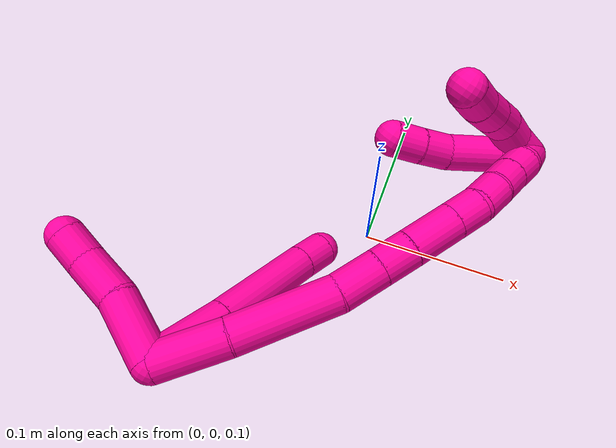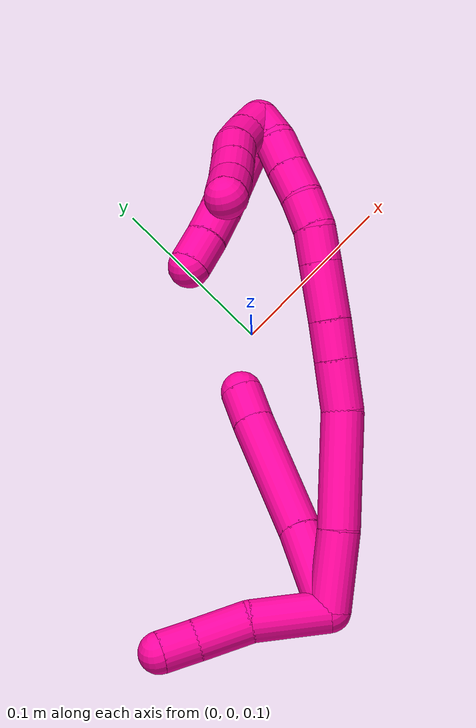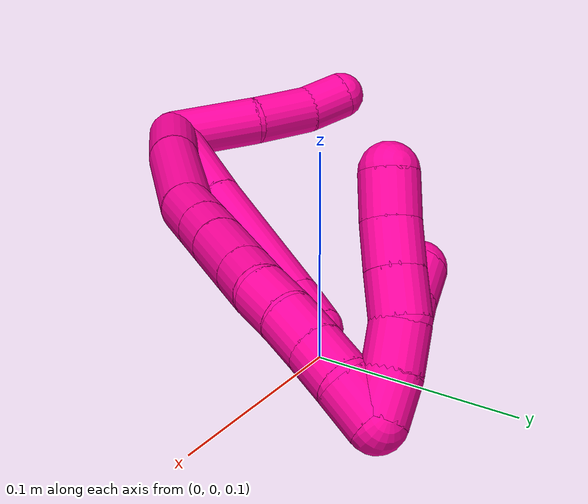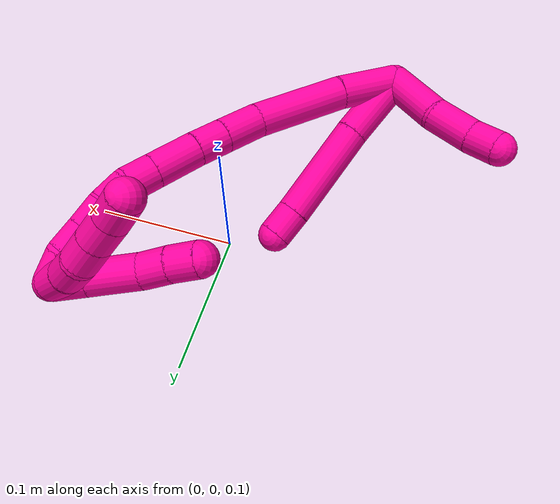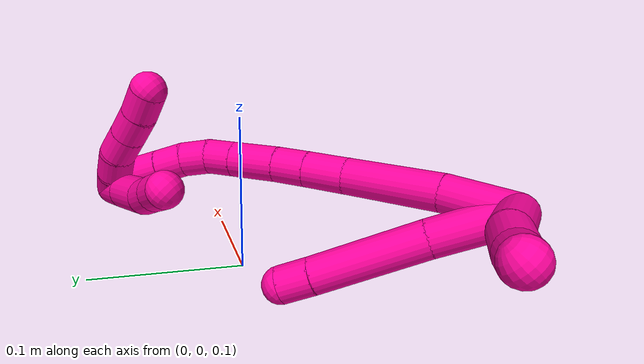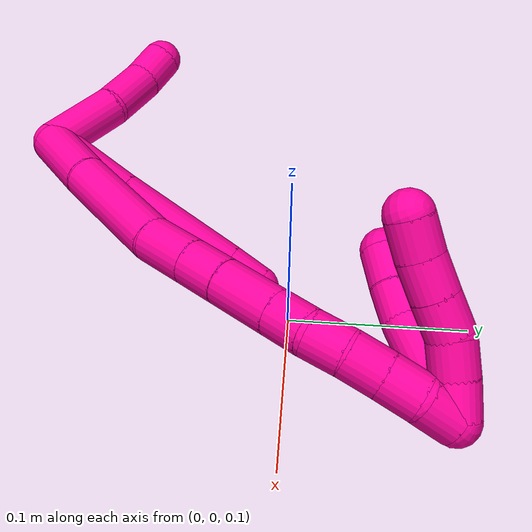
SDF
<sdf version="1.7">
 <world name="default">
  <model name="18">
   <static>0</static>
   <link name="18">
    <collision name="collision-cylinder-e_1_2_8">
     <pose>0.006686 0.022897 0.011166 -1.11707 0.256663 -0.16093</pose>
     <geometry><cylinder><radius>0.0125</radius><length>0.052675</length></cylinder></geometry>
     <surface>
      <friction><ode><mu>1.16</mu><mu2>1.16</mu2><slip1>0</slip1><slip2>0</slip2></ode></friction>
      <contact><ode><kp>1e+06</kp><kd>1</kd><max_vel>0</max_vel><min_depth>0.001</min_depth></ode></contact>
     </surface>
    </collision>
    <visual name="visual-cylinder-e_1_2_8">
     <pose>0.006686 0.022897 0.011166 -1.11707 0.256663 -0.16093</pose>
     <geometry><cylinder><radius>0.0125</radius><length>0.052675</length></cylinder></geometry>
     <material><ambient>1 0.007843 0.615686 1</ambient></material>
    </visual>
    <collision name="collision-cylinder-e_2_8_9">
     <pose>0.02098 0.079345 0.037704 -1.14117 0.203315 -0.13075</pose>
     <geometry><cylinder><radius>0.0125</radius><length>0.07536</length></cylinder></geometry>
     <surface>
      <friction><ode><mu>1.16</mu><mu2>1.16</mu2><slip1>0</slip1><slip2>0</slip2></ode></friction>
      <contact><ode><kp>1e+06</kp><kd>1</kd><max_vel>0</max_vel><min_depth>0.001</min_depth></ode></contact>
     </surface>
    </collision>
    <visual name="visual-cylinder-e_2_8_9">
     <pose>0.02098 0.079345 0.037704 -1.14117 0.203315 -0.13075</pose>
     <geometry><cylinder><radius>0.0125</radius><length>0.07536</length></cylinder></geometry>
     <material><ambient>1 0.007843 0.615686 1</ambient></material>
    </visual>
    <collision name="collision-cylinder-e_3_9_6">
     <pose>0.031226 0.122492 0.057719 -1.12019 0.242499 -0.15252</pose>
     <geometry><cylinder><radius>0.0125</radius><length>0.021964</length></cylinder></geometry>
     <surface>
      <friction><ode><mu>1.16</mu><mu2>1.16</mu2><slip1>0</slip1><slip2>0</slip2></ode></friction>
      <contact><ode><kp>1e+06</kp><kd>1</kd><max_vel>0</max_vel><min_depth>0.001</min_depth></ode></contact>
     </surface>
    </collision>
    <visual name="visual-cylinder-e_3_9_6">
     <pose>0.031226 0.122492 0.057719 -1.12019 0.242499 -0.15252</pose>
     <geometry><cylinder><radius>0.0125</radius><length>0.021964</length></cylinder></geometry>
     <material><ambient>1 0.007843 0.615686 1</ambient></material>
    </visual>
    <collision name="collision-cylinder-e_1_2_10">
     <pose>-0.020536 0.008257 0.004765 -1.04743 -1.13618 0.706316</pose>
     <geometry><cylinder><radius>0.0125</radius><length>0.045282</length></cylinder></geometry>
     <surface>
      <friction><ode><mu>1.16</mu><mu2>1.16</mu2><slip1>0</slip1><slip2>0</slip2></ode></friction>
      <contact><ode><kp>1e+06</kp><kd>1</kd><max_vel>0</max_vel><min_depth>0.001</min_depth></ode></contact>
     </surface>
    </collision>
    <visual name="visual-cylinder-e_1_2_10">
     <pose>-0.020536 0.008257 0.004765 -1.04743 -1.13618 0.706316</pose>
     <geometry><cylinder><radius>0.0125</radius><length>0.045282</length></cylinder></geometry>
     <material><ambient>1 0.007843 0.615686 1</ambient></material>
    </visual>
    <collision name="collision-cylinder-e_2_10_11">
     <pose>-0.056746 0.020844 0.009908 -1.48363 -1.30028 1.21725</pose>
     <geometry><cylinder><radius>0.0125</radius><length>0.03253</length></cylinder></geometry>
     <surface>
      <friction><ode><mu>1.16</mu><mu2>1.16</mu2><slip1>0</slip1><slip2>0</slip2></ode></friction>
      <contact><ode><kp>1e+06</kp><kd>1</kd><max_vel>0</max_vel><min_depth>0.001</min_depth></ode></contact>
     </surface>
    </collision>
    <visual name="visual-cylinder-e_2_10_11">
     <pose>-0.056746 0.020844 0.009908 -1.48363 -1.30028 1.21725</pose>
     <geometry><cylinder><radius>0.0125</radius><length>0.03253</length></cylinder></geometry>
     <material><ambient>1 0.007843 0.615686 1</ambient></material>
    </visual>
    <collision name="collision-cylinder-e_3_11_5">
     <pose>-0.083254 0.026739 0.012088 -0.715221 -1.35402 0.583526</pose>
     <geometry><cylinder><radius>0.0125</radius><length>0.022187</length></cylinder></geometry>
     <surface>
      <friction><ode><mu>1.16</mu><mu2>1.16</mu2><slip1>0</slip1><slip2>0</slip2></ode></friction>
      <contact><ode><kp>1e+06</kp><kd>1</kd><max_vel>0</max_vel><min_depth>0.001</min_depth></ode></contact>
     </surface>
    </collision>
    <visual name="visual-cylinder-e_3_11_5">
     <pose>-0.083254 0.026739 0.012088 -0.715221 -1.35402 0.583526</pose>
     <geometry><cylinder><radius>0.0125</radius><length>0.022187</length></cylinder></geometry>
     <material><ambient>1 0.007843 0.615686 1</ambient></material>
    </visual>
    <collision name="collision-cylinder-e_1_2_12">
     <pose>0.013502 0.00951 0.016381 -0.526022 0.619303 -0.171864</pose>
     <geometry><cylinder><radius>0.0125</radius><length>0.046523</length></cylinder></geometry>
     <surface>
      <friction><ode><mu>1.16</mu><mu2>1.16</mu2><slip1>0</slip1><slip2>0</slip2></ode></friction>
      <contact><ode><kp>1e+06</kp><kd>1</kd><max_vel>0</max_vel><min_depth>0.001</min_depth></ode></contact>
     </surface>
    </collision>
    <visual name="visual-cylinder-e_1_2_12">
     <pose>0.013502 0.00951 0.016381 -0.526022 0.619303 -0.171864</pose>
     <geometry><cylinder><radius>0.0125</radius><length>0.046523</length></cylinder></geometry>
     <material><ambient>1 0.007843 0.615686 1</ambient></material>
    </visual>
    <collision name="collision-cylinder-e_2_12_13">
     <pose>0.044962 0.036026 0.055855 -0.634706 0.559431 -0.188138</pose>
     <geometry><cylinder><radius>0.0125</radius><length>0.067674</length></cylinder></geometry>
     <surface>
      <friction><ode><mu>1.16</mu><mu2>1.16</mu2><slip1>0</slip1><slip2>0</slip2></ode></friction>
      <contact><ode><kp>1e+06</kp><kd>1</kd><max_vel>0</max_vel><min_depth>0.001</min_depth></ode></contact>
     </surface>
    </collision>
    <visual name="visual-cylinder-e_2_12_13">
     <pose>0.044962 0.036026 0.055855 -0.634706 0.559431 -0.188138</pose>
     <geometry><cylinder><radius>0.0125</radius><length>0.067674</length></cylinder></geometry>
     <material><ambient>1 0.007843 0.615686 1</ambient></material>
    </visual>
    <collision name="collision-cylinder-e_3_13_14">
     <pose>0.068391 0.061033 0.089953 -0.628717 0.382293 -0.125669</pose>
     <geometry><cylinder><radius>0.0125</radius><length>0.02933</length></cylinder></geometry>
     <surface>
      <friction><ode><mu>1.16</mu><mu2>1.16</mu2><slip1>0</slip1><slip2>0</slip2></ode></friction>
      <contact><ode><kp>1e+06</kp><kd>1</kd><max_vel>0</max_vel><min_depth>0.001</min_depth></ode></contact>
     </surface>
    </collision>
    <visual name="visual-cylinder-e_3_13_14">
     <pose>0.068391 0.061033 0.089953 -0.628717 0.382293 -0.125669</pose>
     <geometry><cylinder><radius>0.0125</radius><length>0.02933</length></cylinder></geometry>
     <material><ambient>1 0.007843 0.615686 1</ambient></material>
    </visual>
    <collision name="collision-cylinder-e_4_14_15">
     <pose>0.078115 0.075359 0.109459 -0.639615 0.381753 -0.127811</pose>
     <geometry><cylinder><radius>0.0125</radius><length>0.022836</length></cylinder></geometry>
     <surface>
      <friction><ode><mu>1.16</mu><mu2>1.16</mu2><slip1>0</slip1><slip2>0</slip2></ode></friction>
      <contact><ode><kp>1e+06</kp><kd>1</kd><max_vel>0</max_vel><min_depth>0.001</min_depth></ode></contact>
     </surface>
    </collision>
    <visual name="visual-cylinder-e_4_14_15">
     <pose>0.078115 0.075359 0.109459 -0.639615 0.381753 -0.127811</pose>
     <geometry><cylinder><radius>0.0125</radius><length>0.022836</length></cylinder></geometry>
     <material><ambient>1 0.007843 0.615686 1</ambient></material>
    </visual>
    <collision name="collision-cylinder-e_5_15_16">
     <pose>0.088343 0.091455 0.13007 -0.678924 0.366607 -0.130744</pose>
     <geometry><cylinder><radius>0.0125</radius><length>0.033336</length></cylinder></geometry>
     <surface>
      <friction><ode><mu>1.16</mu><mu2>1.16</mu2><slip1>0</slip1><slip2>0</slip2></ode></friction>
      <contact><ode><kp>1e+06</kp><kd>1</kd><max_vel>0</max_vel><min_depth>0.001</min_depth></ode></contact>
     </surface>
    </collision>
    <visual name="visual-cylinder-e_5_15_16">
     <pose>0.088343 0.091455 0.13007 -0.678924 0.366607 -0.130744</pose>
     <geometry><cylinder><radius>0.0125</radius><length>0.033336</length></cylinder></geometry>
     <material><ambient>1 0.007843 0.615686 1</ambient></material>
    </visual>
    <collision name="collision-cylinder-e_6_16_17">
     <pose>0.097927 0.107189 0.149545 -0.680625 0.363896 -0.130109</pose>
     <geometry><cylinder><radius>0.0125</radius><length>0.020282</length></cylinder></geometry>
     <surface>
      <friction><ode><mu>1.16</mu><mu2>1.16</mu2><slip1>0</slip1><slip2>0</slip2></ode></friction>
      <contact><ode><kp>1e+06</kp><kd>1</kd><max_vel>0</max_vel><min_depth>0.001</min_depth></ode></contact>
     </surface>
    </collision>
    <visual name="visual-cylinder-e_6_16_17">
     <pose>0.097927 0.107189 0.149545 -0.680625 0.363896 -0.130109</pose>
     <geometry><cylinder><radius>0.0125</radius><length>0.020282</length></cylinder></geometry>
     <material><ambient>1 0.007843 0.615686 1</ambient></material>
    </visual>
    <collision name="collision-cylinder-e_7_17_18">
     <pose>0.103554 0.120856 0.162965 -0.904614 0.203017 -0.098906</pose>
     <geometry><cylinder><radius>0.0125</radius><length>0.020008</length></cylinder></geometry>
     <surface>
      <friction><ode><mu>1.16</mu><mu2>1.16</mu2><slip1>0</slip1><slip2>0</slip2></ode></friction>
      <contact><ode><kp>1e+06</kp><kd>1</kd><max_vel>0</max_vel><min_depth>0.001</min_depth></ode></contact>
     </surface>
    </collision>
    <visual name="visual-cylinder-e_7_17_18">
     <pose>0.103554 0.120856 0.162965 -0.904614 0.203017 -0.098906</pose>
     <geometry><cylinder><radius>0.0125</radius><length>0.020008</length></cylinder></geometry>
     <material><ambient>1 0.007843 0.615686 1</ambient></material>
    </visual>
    <collision name="collision-cylinder-e_8_18_19">
     <pose>0.107247 0.137211 0.173754 -1.07019 0.168407 -0.099982</pose>
     <geometry><cylinder><radius>0.0125</radius><length>0.020006</length></cylinder></geometry>
     <surface>
      <friction><ode><mu>1.16</mu><mu2>1.16</mu2><slip1>0</slip1><slip2>0</slip2></ode></friction>
      <contact><ode><kp>1e+06</kp><kd>1</kd><max_vel>0</max_vel><min_depth>0.001</min_depth></ode></contact>
     </surface>
    </collision>
    <visual name="visual-cylinder-e_8_18_19">
     <pose>0.107247 0.137211 0.173754 -1.07019 0.168407 -0.099982</pose>
     <geometry><cylinder><radius>0.0125</radius><length>0.020006</length></cylinder></geometry>
     <material><ambient>1 0.007843 0.615686 1</ambient></material>
    </visual>
    <collision name="collision-cylinder-e_9_19_20">
     <pose>0.110871 0.154429 0.183271 -1.0615 0.195865 -0.115199</pose>
     <geometry><cylinder><radius>0.0125</radius><length>0.020006</length></cylinder></geometry>
     <surface>
      <friction><ode><mu>1.16</mu><mu2>1.16</mu2><slip1>0</slip1><slip2>0</slip2></ode></friction>
      <contact><ode><kp>1e+06</kp><kd>1</kd><max_vel>0</max_vel><min_depth>0.001</min_depth></ode></contact>
     </surface>
    </collision>
    <visual name="visual-cylinder-e_9_19_20">
     <pose>0.110871 0.154429 0.183271 -1.0615 0.195865 -0.115199</pose>
     <geometry><cylinder><radius>0.0125</radius><length>0.020006</length></cylinder></geometry>
     <material><ambient>1 0.007843 0.615686 1</ambient></material>
    </visual>
    <collision name="collision-cylinder-e_10_20_1">
     <pose>0.113473 0.17269 0.190419 -1.33162 0.065619 -0.051548</pose>
     <geometry><cylinder><radius>0.0125</radius><length>0.020001</length></cylinder></geometry>
     <surface>
      <friction><ode><mu>1.16</mu><mu2>1.16</mu2><slip1>0</slip1><slip2>0</slip2></ode></friction>
      <contact><ode><kp>1e+06</kp><kd>1</kd><max_vel>0</max_vel><min_depth>0.001</min_depth></ode></contact>
     </surface>
    </collision>
    <visual name="visual-cylinder-e_10_20_1">
     <pose>0.113473 0.17269 0.190419 -1.33162 0.065619 -0.051548</pose>
     <geometry><cylinder><radius>0.0125</radius><length>0.020001</length></cylinder></geometry>
     <material><ambient>1 0.007843 0.615686 1</ambient></material>
    </visual>
    <collision name="collision-cylinder-e_1_1_21">
     <pose>0.1064 0.176506 0.195174 1.18449 -0.883288 -0.615958</pose>
     <geometry><cylinder><radius>0.0125</radius><length>0.02</length></cylinder></geometry>
     <surface>
      <friction><ode><mu>1.16</mu><mu2>1.16</mu2><slip1>0</slip1><slip2>0</slip2></ode></friction>
      <contact><ode><kp>1e+06</kp><kd>1</kd><max_vel>0</max_vel><min_depth>0.001</min_depth></ode></contact>
     </surface>
    </collision>
    <visual name="visual-cylinder-e_1_1_21">
     <pose>0.1064 0.176506 0.195174 1.18449 -0.883288 -0.615958</pose>
     <geometry><cylinder><radius>0.0125</radius><length>0.02</length></cylinder></geometry>
     <material><ambient>1 0.007843 0.615686 1</ambient></material>
    </visual>
    <collision name="collision-cylinder-e_2_21_22">
     <pose>0.092191 0.163585 0.200461 1.18064 -0.705156 -0.483428</pose>
     <geometry><cylinder><radius>0.0125</radius><length>0.02</length></cylinder></geometry>
     <surface>
      <friction><ode><mu>1.16</mu><mu2>1.16</mu2><slip1>0</slip1><slip2>0</slip2></ode></friction>
      <contact><ode><kp>1e+06</kp><kd>1</kd><max_vel>0</max_vel><min_depth>0.001</min_depth></ode></contact>
     </surface>
    </collision>
    <visual name="visual-cylinder-e_2_21_22">
     <pose>0.092191 0.163585 0.200461 1.18064 -0.705156 -0.483428</pose>
     <geometry><cylinder><radius>0.0125</radius><length>0.02</length></cylinder></geometry>
     <material><ambient>1 0.007843 0.615686 1</ambient></material>
    </visual>
    <collision name="collision-cylinder-e_3_22_23">
     <pose>0.080624 0.147989 0.204348 1.45542 -0.533509 -0.477567</pose>
     <geometry><cylinder><radius>0.0125</radius><length>0.02</length></cylinder></geometry>
     <surface>
      <friction><ode><mu>1.16</mu><mu2>1.16</mu2><slip1>0</slip1><slip2>0</slip2></ode></friction>
      <contact><ode><kp>1e+06</kp><kd>1</kd><max_vel>0</max_vel><min_depth>0.001</min_depth></ode></contact>
     </surface>
    </collision>
    <visual name="visual-cylinder-e_3_22_23">
     <pose>0.080624 0.147989 0.204348 1.45542 -0.533509 -0.477567</pose>
     <geometry><cylinder><radius>0.0125</radius><length>0.02</length></cylinder></geometry>
     <material><ambient>1 0.007843 0.615686 1</ambient></material>
    </visual>
    <collision name="collision-cylinder-e_4_23_24">
     <pose>0.070328 0.130975 0.206461 1.43899 -0.548022 -0.482944</pose>
     <geometry><cylinder><radius>0.0125</radius><length>0.02</length></cylinder></geometry>
     <surface>
      <friction><ode><mu>1.16</mu><mu2>1.16</mu2><slip1>0</slip1><slip2>0</slip2></ode></friction>
      <contact><ode><kp>1e+06</kp><kd>1</kd><max_vel>0</max_vel><min_depth>0.001</min_depth></ode></contact>
     </surface>
    </collision>
    <visual name="visual-cylinder-e_4_23_24">
     <pose>0.070328 0.130975 0.206461 1.43899 -0.548022 -0.482944</pose>
     <geometry><cylinder><radius>0.0125</radius><length>0.02</length></cylinder></geometry>
     <material><ambient>1 0.007843 0.615686 1</ambient></material>
    </visual>
    <collision name="collision-cylinder-e_5_24_4">
     <pose>0.05996 0.114218 0.209725 1.31813 -0.541895 -0.423875</pose>
     <geometry><cylinder><radius>0.0125</radius><length>0.02</length></cylinder></geometry>
     <surface>
      <friction><ode><mu>1.16</mu><mu2>1.16</mu2><slip1>0</slip1><slip2>0</slip2></ode></friction>
      <contact><ode><kp>1e+06</kp><kd>1</kd><max_vel>0</max_vel><min_depth>0.001</min_depth></ode></contact>
     </surface>
    </collision>
    <visual name="visual-cylinder-e_5_24_4">
     <pose>0.05996 0.114218 0.209725 1.31813 -0.541895 -0.423875</pose>
     <geometry><cylinder><radius>0.0125</radius><length>0.02</length></cylinder></geometry>
     <material><ambient>1 0.007843 0.615686 1</ambient></material>
    </visual>
    <collision name="collision-cylinder-e_1_1_25">
     <pose>0.104956 0.17813 0.187356 2.47667 -0.926175 -1.93157</pose>
     <geometry><cylinder><radius>0.0125</radius><length>0.02295</length></cylinder></geometry>
     <surface>
      <friction><ode><mu>1.16</mu><mu2>1.16</mu2><slip1>0</slip1><slip2>0</slip2></ode></friction>
      <contact><ode><kp>1e+06</kp><kd>1</kd><max_vel>0</max_vel><min_depth>0.001</min_depth></ode></contact>
     </surface>
    </collision>
    <visual name="visual-cylinder-e_1_1_25">
     <pose>0.104956 0.17813 0.187356 2.47667 -0.926175 -1.93157</pose>
     <geometry><cylinder><radius>0.0125</radius><length>0.02295</length></cylinder></geometry>
     <material><ambient>1 0.007843 0.615686 1</ambient></material>
    </visual>
    <collision name="collision-cylinder-e_2_25_26">
     <pose>0.081158 0.167033 0.173958 2.43224 -0.947891 -1.89093</pose>
     <geometry><cylinder><radius>0.0125</radius><length>0.036016</length></cylinder></geometry>
     <surface>
      <friction><ode><mu>1.16</mu><mu2>1.16</mu2><slip1>0</slip1><slip2>0</slip2></ode></friction>
      <contact><ode><kp>1e+06</kp><kd>1</kd><max_vel>0</max_vel><min_depth>0.001</min_depth></ode></contact>
     </surface>
    </collision>
    <visual name="visual-cylinder-e_2_25_26">
     <pose>0.081158 0.167033 0.173958 2.43224 -0.947891 -1.89093</pose>
     <geometry><cylinder><radius>0.0125</radius><length>0.036016</length></cylinder></geometry>
     <material><ambient>1 0.007843 0.615686 1</ambient></material>
    </visual>
    <collision name="collision-cylinder-e_3_26_27">
     <pose>0.058019 0.154995 0.163562 2.00739 -0.97811 -1.39213</pose>
     <geometry><cylinder><radius>0.0125</radius><length>0.020527</length></cylinder></geometry>
     <surface>
      <friction><ode><mu>1.16</mu><mu2>1.16</mu2><slip1>0</slip1><slip2>0</slip2></ode></friction>
      <contact><ode><kp>1e+06</kp><kd>1</kd><max_vel>0</max_vel><min_depth>0.001</min_depth></ode></contact>
     </surface>
    </collision>
    <visual name="visual-cylinder-e_3_26_27">
     <pose>0.058019 0.154995 0.163562 2.00739 -0.97811 -1.39213</pose>
     <geometry><cylinder><radius>0.0125</radius><length>0.020527</length></cylinder></geometry>
     <material><ambient>1 0.007843 0.615686 1</ambient></material>
    </visual>
    <collision name="collision-cylinder-e_4_27_3">
     <pose>0.040647 0.145167 0.158863 2.02733 -1.04331 -1.49036</pose>
     <geometry><cylinder><radius>0.0125</radius><length>0.020507</length></cylinder></geometry>
     <surface>
      <friction><ode><mu>1.16</mu><mu2>1.16</mu2><slip1>0</slip1><slip2>0</slip2></ode></friction>
      <contact><ode><kp>1e+06</kp><kd>1</kd><max_vel>0</max_vel><min_depth>0.001</min_depth></ode></contact>
     </surface>
    </collision>
    <visual name="visual-cylinder-e_4_27_3">
     <pose>0.040647 0.145167 0.158863 2.02733 -1.04331 -1.49036</pose>
     <geometry><cylinder><radius>0.0125</radius><length>0.020507</length></cylinder></geometry>
     <material><ambient>1 0.007843 0.615686 1</ambient></material>
    </visual>
    <collision name="collision-sphere-3">
     <pose>0.031787 0.140534 0.156588 0 -0 0</pose>
     <geometry><sphere><radius>0.0125</radius></sphere></geometry>
     <surface>
      <friction><ode><mu>1.16</mu><mu2>1.16</mu2><slip1>0</slip1><slip2>0</slip2></ode></friction>
      <contact><ode><kp>1e+06</kp><kd>1</kd><max_vel>0</max_vel><min_depth>0.001</min_depth></ode></contact>
     </surface>
    </collision>
    <visual name="visual-sphere-3">
     <pose>0.031787 0.140534 0.156588 0 -0 0</pose>
     <geometry><sphere><radius>0.0125</radius></sphere></geometry>
     <material><ambient>1 0.007843 0.615686 1</ambient></material>
    </visual>
    <collision name="collision-sphere-27">
     <pose>0.049506 0.1498 0.161138 0 -0 0</pose>
     <geometry><sphere><radius>0.0125</radius></sphere></geometry>
     <surface>
      <friction><ode><mu>1.16</mu><mu2>1.16</mu2><slip1>0</slip1><slip2>0</slip2></ode></friction>
      <contact><ode><kp>1e+06</kp><kd>1</kd><max_vel>0</max_vel><min_depth>0.001</min_depth></ode></contact>
     </surface>
    </collision>
    <visual name="visual-sphere-27">
     <pose>0.049506 0.1498 0.161138 0 -0 0</pose>
     <geometry><sphere><radius>0.0125</radius></sphere></geometry>
     <material><ambient>1 0.007843 0.615686 1</ambient></material>
    </visual>
    <collision name="collision-sphere-26">
     <pose>0.066532 0.16019 0.165987 0 -0 0</pose>
     <geometry><sphere><radius>0.0125</radius></sphere></geometry>
     <surface>
      <friction><ode><mu>1.16</mu><mu2>1.16</mu2><slip1>0</slip1><slip2>0</slip2></ode></friction>
      <contact><ode><kp>1e+06</kp><kd>1</kd><max_vel>0</max_vel><min_depth>0.001</min_depth></ode></contact>
     </surface>
    </collision>
    <visual name="visual-sphere-26">
     <pose>0.066532 0.16019 0.165987 0 -0 0</pose>
     <geometry><sphere><radius>0.0125</radius></sphere></geometry>
     <material><ambient>1 0.007843 0.615686 1</ambient></material>
    </visual>
    <collision name="collision-sphere-25">
     <pose>0.095784 0.173876 0.18193 0 -0 0</pose>
     <geometry><sphere><radius>0.0125</radius></sphere></geometry>
     <surface>
      <friction><ode><mu>1.16</mu><mu2>1.16</mu2><slip1>0</slip1><slip2>0</slip2></ode></friction>
      <contact><ode><kp>1e+06</kp><kd>1</kd><max_vel>0</max_vel><min_depth>0.001</min_depth></ode></contact>
     </surface>
    </collision>
    <visual name="visual-sphere-25">
     <pose>0.095784 0.173876 0.18193 0 -0 0</pose>
     <geometry><sphere><radius>0.0125</radius></sphere></geometry>
     <material><ambient>1 0.007843 0.615686 1</ambient></material>
    </visual>
    <collision name="collision-sphere-4">
     <pose>0.054803 0.105922 0.211867 0 -0 0</pose>
     <geometry><sphere><radius>0.0125</radius></sphere></geometry>
     <surface>
      <friction><ode><mu>1.16</mu><mu2>1.16</mu2><slip1>0</slip1><slip2>0</slip2></ode></friction>
      <contact><ode><kp>1e+06</kp><kd>1</kd><max_vel>0</max_vel><min_depth>0.001</min_depth></ode></contact>
     </surface>
    </collision>
    <visual name="visual-sphere-4">
     <pose>0.054803 0.105922 0.211867 0 -0 0</pose>
     <geometry><sphere><radius>0.0125</radius></sphere></geometry>
     <material><ambient>1 0.007843 0.615686 1</ambient></material>
    </visual>
    <collision name="collision-sphere-24">
     <pose>0.065118 0.122513 0.207583 0 -0 0</pose>
     <geometry><sphere><radius>0.0125</radius></sphere></geometry>
     <surface>
      <friction><ode><mu>1.16</mu><mu2>1.16</mu2><slip1>0</slip1><slip2>0</slip2></ode></friction>
      <contact><ode><kp>1e+06</kp><kd>1</kd><max_vel>0</max_vel><min_depth>0.001</min_depth></ode></contact>
     </surface>
    </collision>
    <visual name="visual-sphere-24">
     <pose>0.065118 0.122513 0.207583 0 -0 0</pose>
     <geometry><sphere><radius>0.0125</radius></sphere></geometry>
     <material><ambient>1 0.007843 0.615686 1</ambient></material>
    </visual>
    <collision name="collision-sphere-23">
     <pose>0.075538 0.139436 0.20534 0 -0 0</pose>
     <geometry><sphere><radius>0.0125</radius></sphere></geometry>
     <surface>
      <friction><ode><mu>1.16</mu><mu2>1.16</mu2><slip1>0</slip1><slip2>0</slip2></ode></friction>
      <contact><ode><kp>1e+06</kp><kd>1</kd><max_vel>0</max_vel><min_depth>0.001</min_depth></ode></contact>
     </surface>
    </collision>
    <visual name="visual-sphere-23">
     <pose>0.075538 0.139436 0.20534 0 -0 0</pose>
     <geometry><sphere><radius>0.0125</radius></sphere></geometry>
     <material><ambient>1 0.007843 0.615686 1</ambient></material>
    </visual>
    <collision name="collision-sphere-22">
     <pose>0.085709 0.156542 0.203357 0 -0 0</pose>
     <geometry><sphere><radius>0.0125</radius></sphere></geometry>
     <surface>
      <friction><ode><mu>1.16</mu><mu2>1.16</mu2><slip1>0</slip1><slip2>0</slip2></ode></friction>
      <contact><ode><kp>1e+06</kp><kd>1</kd><max_vel>0</max_vel><min_depth>0.001</min_depth></ode></contact>
     </surface>
    </collision>
    <visual name="visual-sphere-22">
     <pose>0.085709 0.156542 0.203357 0 -0 0</pose>
     <geometry><sphere><radius>0.0125</radius></sphere></geometry>
     <material><ambient>1 0.007843 0.615686 1</ambient></material>
    </visual>
    <collision name="collision-sphere-21">
     <pose>0.098672 0.170628 0.197565 0 -0 0</pose>
     <geometry><sphere><radius>0.0125</radius></sphere></geometry>
     <surface>
      <friction><ode><mu>1.16</mu><mu2>1.16</mu2><slip1>0</slip1><slip2>0</slip2></ode></friction>
      <contact><ode><kp>1e+06</kp><kd>1</kd><max_vel>0</max_vel><min_depth>0.001</min_depth></ode></contact>
     </surface>
    </collision>
    <visual name="visual-sphere-21">
     <pose>0.098672 0.170628 0.197565 0 -0 0</pose>
     <geometry><sphere><radius>0.0125</radius></sphere></geometry>
     <material><ambient>1 0.007843 0.615686 1</ambient></material>
    </visual>
    <collision name="collision-sphere-1">
     <pose>0.114129 0.182385 0.192783 0 -0 0</pose>
     <geometry><sphere><radius>0.0125</radius></sphere></geometry>
     <surface>
      <friction><ode><mu>1.16</mu><mu2>1.16</mu2><slip1>0</slip1><slip2>0</slip2></ode></friction>
      <contact><ode><kp>1e+06</kp><kd>1</kd><max_vel>0</max_vel><min_depth>0.001</min_depth></ode></contact>
     </surface>
    </collision>
    <visual name="visual-sphere-1">
     <pose>0.114129 0.182385 0.192783 0 -0 0</pose>
     <geometry><sphere><radius>0.0125</radius></sphere></geometry>
     <material><ambient>1 0.007843 0.615686 1</ambient></material>
    </visual>
    <collision name="collision-sphere-11">
     <pose>-0.07242 0.025174 0.010286 0 -0 0</pose>
     <geometry><sphere><radius>0.0125</radius></sphere></geometry>
     <surface>
      <friction><ode><mu>1.16</mu><mu2>1.16</mu2><slip1>0</slip1><slip2>0</slip2></ode></friction>
      <contact><ode><kp>1e+06</kp><kd>1</kd><max_vel>0</max_vel><min_depth>0.001</min_depth></ode></contact>
     </surface>
    </collision>
    <visual name="visual-sphere-11">
     <pose>-0.07242 0.025174 0.010286 0 -0 0</pose>
     <geometry><sphere><radius>0.0125</radius></sphere></geometry>
     <material><ambient>1 0.007843 0.615686 1</ambient></material>
    </visual>
    <collision name="collision-sphere-10">
     <pose>-0.041073 0.016514 0.009529 0 -0 0</pose>
     <geometry><sphere><radius>0.0125</radius></sphere></geometry>
     <surface>
      <friction><ode><mu>1.16</mu><mu2>1.16</mu2><slip1>0</slip1><slip2>0</slip2></ode></friction>
      <contact><ode><kp>1e+06</kp><kd>1</kd><max_vel>0</max_vel><min_depth>0.001</min_depth></ode></contact>
     </surface>
    </collision>
    <visual name="visual-sphere-10">
     <pose>-0.041073 0.016514 0.009529 0 -0 0</pose>
     <geometry><sphere><radius>0.0125</radius></sphere></geometry>
     <material><ambient>1 0.007843 0.615686 1</ambient></material>
    </visual>
    <collision name="collision-sphere-6">
     <pose>0.033863 0.132089 0.062362 0 -0 0</pose>
     <geometry><sphere><radius>0.0125</radius></sphere></geometry>
     <surface>
      <friction><ode><mu>1.16</mu><mu2>1.16</mu2><slip1>0</slip1><slip2>0</slip2></ode></friction>
      <contact><ode><kp>1e+06</kp><kd>1</kd><max_vel>0</max_vel><min_depth>0.001</min_depth></ode></contact>
     </surface>
    </collision>
    <visual name="visual-sphere-6">
     <pose>0.033863 0.132089 0.062362 0 -0 0</pose>
     <geometry><sphere><radius>0.0125</radius></sphere></geometry>
     <material><ambient>1 0.007843 0.615686 1</ambient></material>
    </visual>
    <collision name="collision-sphere-9">
     <pose>0.028588 0.112895 0.053076 0 -0 0</pose>
     <geometry><sphere><radius>0.0125</radius></sphere></geometry>
     <surface>
      <friction><ode><mu>1.16</mu><mu2>1.16</mu2><slip1>0</slip1><slip2>0</slip2></ode></friction>
      <contact><ode><kp>1e+06</kp><kd>1</kd><max_vel>0</max_vel><min_depth>0.001</min_depth></ode></contact>
     </surface>
    </collision>
    <visual name="visual-sphere-9">
     <pose>0.028588 0.112895 0.053076 0 -0 0</pose>
     <geometry><sphere><radius>0.0125</radius></sphere></geometry>
     <material><ambient>1 0.007843 0.615686 1</ambient></material>
    </visual>
    <collision name="collision-sphere-2">
     <geometry><sphere><radius>0.0125</radius></sphere></geometry>
     <surface>
      <friction><ode><mu>1.16</mu><mu2>1.16</mu2><slip1>0</slip1><slip2>0</slip2></ode></friction>
      <contact><ode><kp>1e+06</kp><kd>1</kd><max_vel>0</max_vel><min_depth>0.001</min_depth></ode></contact>
     </surface>
    </collision>
    <visual name="visual-sphere-2">
     <geometry><sphere><radius>0.0125</radius></sphere></geometry>
     <material><ambient>1 0.007843 0.615686 1</ambient></material>
    </visual>
    <collision name="collision-sphere-19">
     <pose>0.108924 0.145862 0.178487 0 -0 0</pose>
     <geometry><sphere><radius>0.0125</radius></sphere></geometry>
     <surface>
      <friction><ode><mu>1.16</mu><mu2>1.16</mu2><slip1>0</slip1><slip2>0</slip2></ode></friction>
      <contact><ode><kp>1e+06</kp><kd>1</kd><max_vel>0</max_vel><min_depth>0.001</min_depth></ode></contact>
     </surface>
    </collision>
    <visual name="visual-sphere-19">
     <pose>0.108924 0.145862 0.178487 0 -0 0</pose>
     <geometry><sphere><radius>0.0125</radius></sphere></geometry>
     <material><ambient>1 0.007843 0.615686 1</ambient></material>
    </visual>
    <collision name="collision-sphere-8">
     <pose>0.013372 0.045795 0.022332 0 -0 0</pose>
     <geometry><sphere><radius>0.0125</radius></sphere></geometry>
     <surface>
      <friction><ode><mu>1.16</mu><mu2>1.16</mu2><slip1>0</slip1><slip2>0</slip2></ode></friction>
      <contact><ode><kp>1e+06</kp><kd>1</kd><max_vel>0</max_vel><min_depth>0.001</min_depth></ode></contact>
     </surface>
    </collision>
    <visual name="visual-sphere-8">
     <pose>0.013372 0.045795 0.022332 0 -0 0</pose>
     <geometry><sphere><radius>0.0125</radius></sphere></geometry>
     <material><ambient>1 0.007843 0.615686 1</ambient></material>
    </visual>
    <collision name="collision-sphere-5">
     <pose>-0.094088 0.028304 0.013889 0 -0 0</pose>
     <geometry><sphere><radius>0.0125</radius></sphere></geometry>
     <surface>
      <friction><ode><mu>1.16</mu><mu2>1.16</mu2><slip1>0</slip1><slip2>0</slip2></ode></friction>
      <contact><ode><kp>1e+06</kp><kd>1</kd><max_vel>0</max_vel><min_depth>0.001</min_depth></ode></contact>
     </surface>
    </collision>
    <visual name="visual-sphere-5">
     <pose>-0.094088 0.028304 0.013889 0 -0 0</pose>
     <geometry><sphere><radius>0.0125</radius></sphere></geometry>
     <material><ambient>1 0.007843 0.615686 1</ambient></material>
    </visual>
    <collision name="collision-sphere-12">
     <pose>0.027005 0.019021 0.032761 0 -0 0</pose>
     <geometry><sphere><radius>0.0125</radius></sphere></geometry>
     <surface>
      <friction><ode><mu>1.16</mu><mu2>1.16</mu2><slip1>0</slip1><slip2>0</slip2></ode></friction>
      <contact><ode><kp>1e+06</kp><kd>1</kd><max_vel>0</max_vel><min_depth>0.001</min_depth></ode></contact>
     </surface>
    </collision>
    <visual name="visual-sphere-12">
     <pose>0.027005 0.019021 0.032761 0 -0 0</pose>
     <geometry><sphere><radius>0.0125</radius></sphere></geometry>
     <material><ambient>1 0.007843 0.615686 1</ambient></material>
    </visual>
    <collision name="collision-sphere-13">
     <pose>0.06292 0.05303 0.078948 0 -0 0</pose>
     <geometry><sphere><radius>0.0125</radius></sphere></geometry>
     <surface>
      <friction><ode><mu>1.16</mu><mu2>1.16</mu2><slip1>0</slip1><slip2>0</slip2></ode></friction>
      <contact><ode><kp>1e+06</kp><kd>1</kd><max_vel>0</max_vel><min_depth>0.001</min_depth></ode></contact>
     </surface>
    </collision>
    <visual name="visual-sphere-13">
     <pose>0.06292 0.05303 0.078948 0 -0 0</pose>
     <geometry><sphere><radius>0.0125</radius></sphere></geometry>
     <material><ambient>1 0.007843 0.615686 1</ambient></material>
    </visual>
    <collision name="collision-sphere-14">
     <pose>0.073861 0.069035 0.100958 0 -0 0</pose>
     <geometry><sphere><radius>0.0125</radius></sphere></geometry>
     <surface>
      <friction><ode><mu>1.16</mu><mu2>1.16</mu2><slip1>0</slip1><slip2>0</slip2></ode></friction>
      <contact><ode><kp>1e+06</kp><kd>1</kd><max_vel>0</max_vel><min_depth>0.001</min_depth></ode></contact>
     </surface>
    </collision>
    <visual name="visual-sphere-14">
     <pose>0.073861 0.069035 0.100958 0 -0 0</pose>
     <geometry><sphere><radius>0.0125</radius></sphere></geometry>
     <material><ambient>1 0.007843 0.615686 1</ambient></material>
    </visual>
    <collision name="collision-sphere-15">
     <pose>0.082369 0.081684 0.11796 0 -0 0</pose>
     <geometry><sphere><radius>0.0125</radius></sphere></geometry>
     <surface>
      <friction><ode><mu>1.16</mu><mu2>1.16</mu2><slip1>0</slip1><slip2>0</slip2></ode></friction>
      <contact><ode><kp>1e+06</kp><kd>1</kd><max_vel>0</max_vel><min_depth>0.001</min_depth></ode></contact>
     </surface>
    </collision>
    <visual name="visual-sphere-15">
     <pose>0.082369 0.081684 0.11796 0 -0 0</pose>
     <geometry><sphere><radius>0.0125</radius></sphere></geometry>
     <material><ambient>1 0.007843 0.615686 1</ambient></material>
    </visual>
    <collision name="collision-sphere-16">
     <pose>0.094318 0.101226 0.14218 0 -0 0</pose>
     <geometry><sphere><radius>0.0125</radius></sphere></geometry>
     <surface>
      <friction><ode><mu>1.16</mu><mu2>1.16</mu2><slip1>0</slip1><slip2>0</slip2></ode></friction>
      <contact><ode><kp>1e+06</kp><kd>1</kd><max_vel>0</max_vel><min_depth>0.001</min_depth></ode></contact>
     </surface>
    </collision>
    <visual name="visual-sphere-16">
     <pose>0.094318 0.101226 0.14218 0 -0 0</pose>
     <geometry><sphere><radius>0.0125</radius></sphere></geometry>
     <material><ambient>1 0.007843 0.615686 1</ambient></material>
    </visual>
    <collision name="collision-sphere-17">
     <pose>0.101537 0.113153 0.15691 0 -0 0</pose>
     <geometry><sphere><radius>0.0125</radius></sphere></geometry>
     <surface>
      <friction><ode><mu>1.16</mu><mu2>1.16</mu2><slip1>0</slip1><slip2>0</slip2></ode></friction>
      <contact><ode><kp>1e+06</kp><kd>1</kd><max_vel>0</max_vel><min_depth>0.001</min_depth></ode></contact>
     </surface>
    </collision>
    <visual name="visual-sphere-17">
     <pose>0.101537 0.113153 0.15691 0 -0 0</pose>
     <geometry><sphere><radius>0.0125</radius></sphere></geometry>
     <material><ambient>1 0.007843 0.615686 1</ambient></material>
    </visual>
    <collision name="collision-sphere-18">
     <pose>0.105571 0.12856 0.169021 0 -0 0</pose>
     <geometry><sphere><radius>0.0125</radius></sphere></geometry>
     <surface>
      <friction><ode><mu>1.16</mu><mu2>1.16</mu2><slip1>0</slip1><slip2>0</slip2></ode></friction>
      <contact><ode><kp>1e+06</kp><kd>1</kd><max_vel>0</max_vel><min_depth>0.001</min_depth></ode></contact>
     </surface>
    </collision>
    <visual name="visual-sphere-18">
     <pose>0.105571 0.12856 0.169021 0 -0 0</pose>
     <geometry><sphere><radius>0.0125</radius></sphere></geometry>
     <material><ambient>1 0.007843 0.615686 1</ambient></material>
    </visual>
    <collision name="collision-sphere-20">
     <pose>0.112817 0.162995 0.188055 0 -0 0</pose>
     <geometry><sphere><radius>0.0125</radius></sphere></geometry>
     <surface>
      <friction><ode><mu>1.16</mu><mu2>1.16</mu2><slip1>0</slip1><slip2>0</slip2></ode></friction>
      <contact><ode><kp>1e+06</kp><kd>1</kd><max_vel>0</max_vel><min_depth>0.001</min_depth></ode></contact>
     </surface>
    </collision>
    <visual name="visual-sphere-20">
     <pose>0.112817 0.162995 0.188055 0 -0 0</pose>
     <geometry><sphere><radius>0.0125</radius></sphere></geometry>
     <material><ambient>1 0.007843 0.615686 1</ambient></material>
    </visual>
    <inertial>
     <pose>0.046186 0.087693 0.099024 0 -0 0</pose>
     <mass>0.75</mass>
     <inertia><ixx>8.2e-05</ixx><ixy>0</ixy><ixz>0</ixz><iyy>9.2e-05</iyy><iyz>0</iyz><izz>-6.4e-05</izz></inertia>
    </inertial>
   </link>
   <pose>-0.085889 -0.146578 0.151351 -0.786582 0.188577 -0.251147</pose>
  </model>
 </world>
</sdf>
